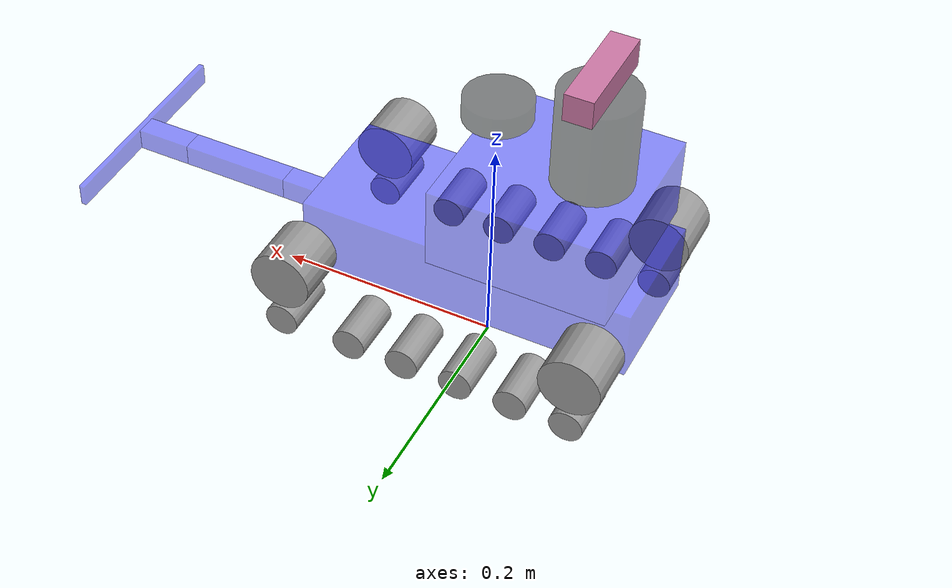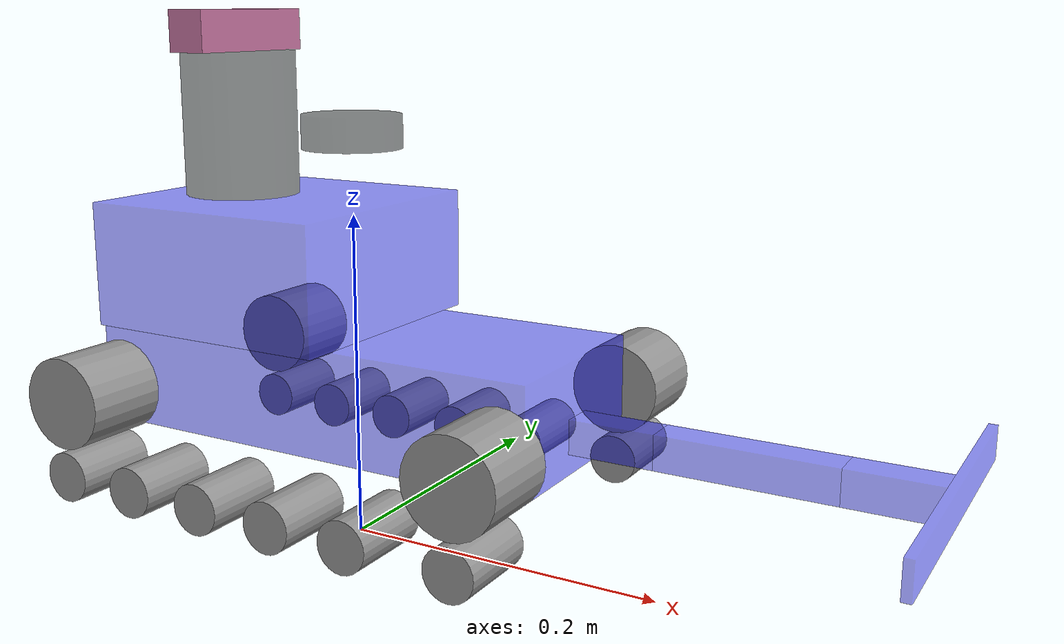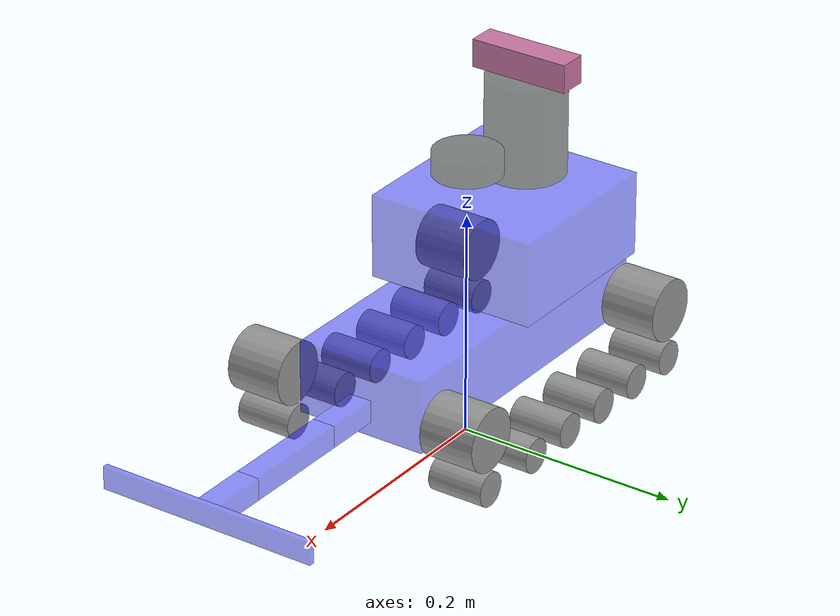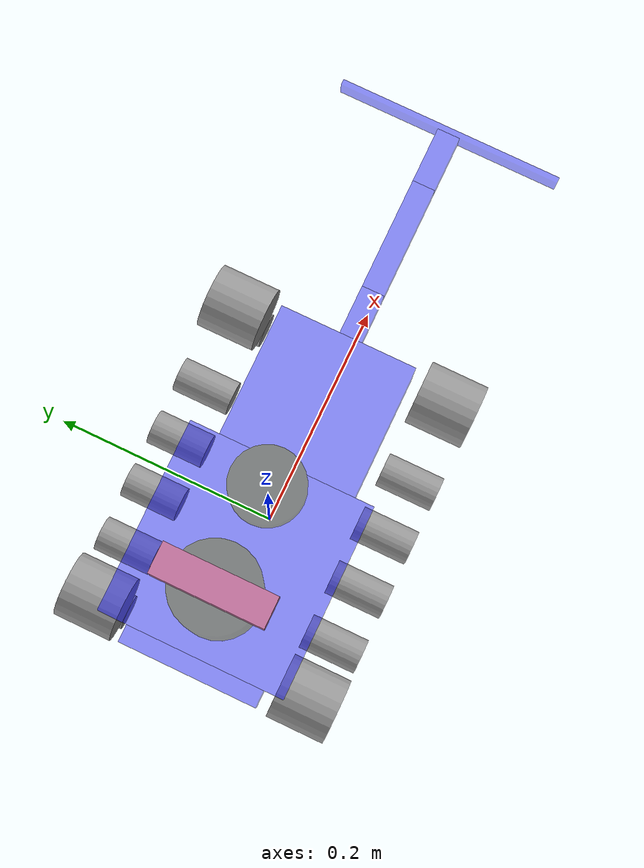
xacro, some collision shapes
<?xml version="1.0"?>
<robot name="robot" xmlns:xacro="http://wiki.ros.org/xacro">
    <xacro:arg name="robot_color" default="Green" />
    <xacro:arg name="robot_name" default="robot" />
    <xacro:arg name="robot_namespace" default="" />
    <xacro:property name="robot_color" value="$(arg robot_color)"/>
    <xacro:property name="robot_name" value="$(arg robot_name)"/>
    <xacro:property name="robot_namespace" value="$(arg robot_namespace)"/>
    <xacro:property name="PI" value="3.1415926"/>
    <xacro:macro name="default_inertial" params="mass">
		<inertial>
			<mass value="1"/>
			<inertia ixx="0.1" ixy="0.0" ixz="0.0" iyy="0.1" iyz="0.0" izz="0.1" />
		</inertial>
	</xacro:macro>
    <xacro:macro name="wheel_func" params="wheel_name radius length xyz rpy mu mu2" >
        <link name="${robot_name}_${wheel_name}_link">
            <visual>
                <geometry>
                    <cylinder radius="${radius}" length="${length}" />
                </geometry>
                <origin xyz="0 0 0" rpy="${PI / 2} 0 0" />
            </visual>
            <collision>
                <origin xyz="0 0 0" rpy="${PI / 2} 0 0"/>
                <geometry>
                    <cylinder radius="${radius}" length="${length}" />
                </geometry>
            </collision>
            <xacro:default_inertial mass="0.3"/>
        </link>
        <joint name="${robot_name}_${wheel_name}_joint" type="continuous">
            <parent link="${robot_name}_base_link"/>
            <child link="${robot_name}_${wheel_name}_link"/>
            <origin xyz="${xyz}" rpy="${rpy}"/>
            <axis xyz="0 1 0" />
        </joint>
        <gazebo reference="${robot_name}_${wheel_name}_link">
            <material>Gazebo/Gray</material>
        </gazebo>
    </xacro:macro>

    <link name="${robot_name}_base_footprint"/>
    <link name="${robot_name}_base_link">
        <visual>
            <origin xyz="0 0 0" rpy="0 0 0"/>
            <geometry>
                <box size="0.300 0.120 0.065"/>
            </geometry>
            <material name="blue">
                <color rgba="0.1 0.1 1.0 0.5" />
            </material>
        </visual>
        <collision>
            <origin xyz="0 0 0" rpy="0 0 0"/>
            <geometry>
                <box size="0.300 0.120 0.065"/>
            </geometry>
            <material name="blue">
                <color rgba="0.1 0.1 1.0 0.5" />
            </material>
        </collision>
        <xacro:default_inertial mass="2"/>
    </link>
    <link name="${robot_name}_plat_link">
        <visual>
            <origin xyz="0 0 0.0" rpy="0 0 0"/>
            <geometry>
                <box size="0.16 0.155 0.075"/>
            </geometry>
            <material name="blue">
                <color rgba="0.1 0.1 1.0 0.5" />
            </material>
        </visual>
        <collision>
            <origin xyz="0 0 0" rpy="0 0 0"/>
            <geometry>
                <box size="0.16 0.155 0.075"/>
            </geometry>
            <material name="blue">
                <color rgba="0.1 0.1 1.0 0.5" />
            </material>
        </collision>
        <xacro:default_inertial mass="0.02"/>
    </link>
    <link name="${robot_name}_laser_link">
        <visual>
            <origin xyz="0 0 0" rpy="0 0 0"/>
            <geometry>
                <cylinder length="0.02" radius="0.03"/>
            </geometry>
            <material name="black">
                <color rgba="0.0 0.0 0.0 0.5" />
            </material>
        </visual>
        <collision>
            <origin xyz="0 0 0" rpy="0 0 0"/>
            <geometry>
                <cylinder length="0.02" radius="0.03"/>
            </geometry>
                <material name="black">
                <color rgba="0.0 0.0 0.0 0.5" />
            </material>
        </collision>
        <xacro:default_inertial mass="0.01"/>
    </link>
    <link name="${robot_name}_tripod_link">
        <visual>
            <origin xyz="0 0 0" rpy="0 0 0"/>
            <geometry>
                <cylinder length="0.09" radius="0.035"/>
            </geometry>
            <material name="black">
                <color rgba="0.0 0.0 0.0 0.5" />
            </material>
        </visual>
        <collision>
            <origin xyz="0 0 0" rpy="0 0 0"/>
            <geometry>
                <cylinder length="0.09" radius="0.035"/>
            </geometry>
                <material name="black">
                <color rgba="0.0 0.0 0.0 0.5" />
            </material>
        </collision>
        <xacro:default_inertial mass="0.01"/>
    </link>

    <joint name="${robot_name}_base_joint" type="fixed">
        <parent link="${robot_name}_base_footprint"/>
        <child link="${robot_name}_base_link"/>
        <origin xyz="0.0 0.0 0.1" rpy="0 0 0"/>
    </joint>
    <joint name="${robot_name}_plat_joint" type="fixed">
        <parent link="${robot_name}_base_link"/>
        <child link="${robot_name}_plat_link"/>
        <origin xyz="-0.055 0.0 0.07" rpy="0 0 0"/>
    </joint>
    <joint name="${robot_name}_laser_joint" type="fixed">
        <parent link="${robot_name}_plat_link"/>
        <child link="${robot_name}_laser_link"/>
        <origin xyz="0.055 0.0 0.08" rpy="0 0 0"/>
    </joint>
    <joint name="${robot_name}_tripod_joint" type="revolute">
        <parent link="${robot_name}_plat_link"/>
        <child link="${robot_name}_tripod_link"/>
        <origin xyz="-0.03 0.0 0.08" rpy="0 0 0"/>
        <axis xyz="0 0 1" />
        <limit effort="30" velocity="1.0" lower="-2.3561944" upper="2.3561944" />
    </joint>

    <xacro:wheel_func wheel_name="left_front" xyz="0.14 -0.095 -0.005" rpy="0 0 0" radius="0.0275" length="0.05" mu="1" mu2="1"/>

    <xacro:wheel_func wheel_name="left0" xyz="0.14 -0.095 -0.05" rpy="0 0 0" radius="0.015" length="0.05" mu="1" mu2="1"/>
    <xacro:wheel_func wheel_name="left1" xyz="0.075 -0.095 -0.05" rpy="0 0 0" radius="0.015" length="0.05" mu="1" mu2="1"/>
    <xacro:wheel_func wheel_name="left2" xyz="0.025 -0.095 -0.05" rpy="0 0 0" radius="0.015" length="0.05" mu="1" mu2="1"/>
    <xacro:wheel_func wheel_name="left3" xyz="-0.025 -0.095 -0.05" rpy="0 0 0" radius="0.015" length="0.05" mu="1" mu2="1"/>
    <xacro:wheel_func wheel_name="left4" xyz="-0.075 -0.095 -0.05" rpy="0 0 0" radius="0.015" length="0.05" mu="1" mu2="1"/>
    <xacro:wheel_func wheel_name="left5" xyz="-0.125 -0.095 -0.05" rpy="0 0 0" radius="0.015" length="0.05" mu="1" mu2="1"/>

    <xacro:wheel_func wheel_name="left_back" xyz="-0.125 -0.095 -0.005" rpy="0 0 0" radius="0.0275" length="0.05" mu="1" mu2="1"/>

    <xacro:wheel_func wheel_name="right_front" xyz="0.14 0.095 -0.005" rpy="0 0 0" radius="0.0275" length="0.05" mu="1" mu2="1"/>

    <xacro:wheel_func wheel_name="right0" xyz="0.14 0.095 -0.05" rpy="0 0 0" radius="0.015" length="0.05" mu="1" mu2="1"/>
    <xacro:wheel_func wheel_name="right1" xyz="0.075 0.095 -0.05" rpy="0 0 0" radius="0.015" length="0.05" mu="1" mu2="1"/>
    <xacro:wheel_func wheel_name="right2" xyz="0.025 0.095 -0.05" rpy="0 0 0" radius="0.015" length="0.05" mu="1" mu2="1"/>
    <xacro:wheel_func wheel_name="right3" xyz="-0.025 0.095 -0.05" rpy="0 0 0" radius="0.015" length="0.05" mu="1" mu2="1"/>
    <xacro:wheel_func wheel_name="right4" xyz="-0.075 0.095 -0.05" rpy="0 0 0" radius="0.015" length="0.05" mu="1" mu2="1"/>
    <xacro:wheel_func wheel_name="right5" xyz="-0.125 0.095 -0.05" rpy="0 0 0" radius="0.015" length="0.05" mu="1" mu2="1"/>

    <xacro:wheel_func wheel_name="right_back" xyz="-0.125 0.095 -0.005" rpy="0 0 0" radius="0.0275" length="0.05" mu="1" mu2="1"/>

    <gazebo reference="${robot_name}_base_link">
        <material>Gazebo/${robot_color}</material>
    </gazebo>
    <gazebo reference="${robot_name}_plat_link">
        <material>Gazebo/Black</material>
    </gazebo>
    <gazebo reference="${robot_name}_laser_link">
        <material>Gazebo/Gray</material>
    </gazebo>
    <gazebo reference="${robot_name}_tripod_link">
        <material>Gazebo/Gray</material>
    </gazebo>

    <xacro:include filename="$(find caterpillar_robot)/urdf/d435.xacro"/>

    <xacro:realsense_d435 sensor_name="${robot_name}_d435" parent_link="${robot_name}_tripod_link" rate="30" robot_name="${robot_name}">
        <origin rpy="0 0 0 " xyz="0 0 0.045"/>
    </xacro:realsense_d435>

    <xacro:include filename="$(find caterpillar_robot)/urdf/servo_arm.xacro"/>
    <xacro:servo_arm robot_name="${robot_name}" arm_name="arm" parent_link="${robot_name}_base_link">
        <origin rpy="0 0 0 " xyz="0.15 0 -0.01"/>
    </xacro:servo_arm>

    <gazebo>
        <plugin name='${robot_name}_diff_drive' filename='libgazebo_ros_planar_move.so'>
            <ros>
                <namespace>/${robot_namespace}</namespace>
            </ros>
            <update_rate>100</update_rate>
            <publish_rate>100</publish_rate>
            <publish_odom>true</publish_odom>
            <publish_odom_tf>true</publish_odom_tf>

            <odometry_frame>${robot_name}_odom</odometry_frame>
            <robot_base_frame>${robot_name}_base_footprint</robot_base_frame>
        </plugin>
    </gazebo>

    <gazebo reference="${robot_name}_laser_link">
        <sensor name="${robot_name}_laser_sensor" type="ray">
        <always_on>true</always_on>
        <visualize>false</visualize>
        <update_rate>10</update_rate>
        <pose>0 0 0.075 0 0 0</pose>
        <ray>
            <scan>
              <horizontal>
                <samples>360</samples>
                <resolution>1.000000</resolution>
                <min_angle>0.00</min_angle>
                <max_angle>6.28</max_angle>
              </horizontal>
            </scan>
            <range>
              <min>0.200000</min>
              <max>50</max>
              <resolution>0.005000</resolution>
            </range>
            <noise>
              <type>gaussian</type>
              <mean>0.0</mean>
              <stddev>0.001</stddev>
            </noise>
        </ray>

        <plugin name="${robot_name}_laserscan" filename="libgazebo_ros_ray_sensor.so">
          <robotNamespace>/${robot_namespace}</robotNamespace>
          <ros>
            <namespace>/${robot_namespace}</namespace>
            <remapping>~/out:=scan</remapping>
          </ros>
          <output_type>sensor_msgs/LaserScan</output_type>
          <frame_name>laser_link</frame_name>
        </plugin>
        </sensor>
      </gazebo>

    <gazebo>
        <plugin name="${robot_name}_tripod_trajectory" filename="libgazebo_ros_servojoint.so">
            <ros>
                <namespace>/${robot_namespace}</namespace>
                <remapping>set_servojoint:=tripod</remapping>
            </ros>
            <update_rate>10</update_rate>
            <joints>${robot_name}_tripod_joint</joints>
        </plugin>
    </gazebo>

    <gazebo>
        <plugin name="${robot_name}_sokoban" filename="libgazebo_ros_sokoban.so">
            <ros>
                <namespace>/${robot_namespace}</namespace>
            </ros>
            <joint_arm>${robot_name}_arm_arm_joint</joint_arm>
            <joint_hand>${robot_name}_arm_hand_joint</joint_hand>
        </plugin>
    </gazebo>

</robot>

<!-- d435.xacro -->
<robot xmlns:xacro="http://www.ros.org/wiki/xacro">

  <xacro:include filename="$(find realsense_ros2_gazebo)/xacro/inertia_calc.xacro"/>

  <!-- INTEL REALSENSE D435 -->

  <xacro:macro name="realsense_d435" params="sensor_name parent_link *origin rate robot_name">

    <xacro:property name="d435_cam_depth_to_left_ir_offset" value="0.0"/>
    <xacro:property name="d435_cam_depth_to_right_ir_offset" value="-0.050"/>
    <xacro:property name="d435_cam_depth_to_color_offset" value="0.015"/>
    <xacro:property name="d435_cam_width" value="0.090"/>
    <xacro:property name="d435_cam_height" value="0.025"/>
    <xacro:property name="d435_cam_depth" value="0.02505"/>
    <xacro:property name="d435_cam_mass" value="0.564"/>
    <xacro:property name="d435_cam_mount_from_center_offset" value="0.0149"/>
    <xacro:property name="d435_cam_depth_px" value="${d435_cam_mount_from_center_offset}"/>
    <xacro:property name="d435_cam_depth_py" value="0.0175"/>
    <xacro:property name="d435_cam_depth_pz" value="${d435_cam_height/2}"/>

    <!-- camera body, with origin at bottom screw mount -->
    <joint name="${sensor_name}_joint" type="fixed">
      <xacro:insert_block name="origin" />
      <parent link="${parent_link}"/>
      <child link="${sensor_name}_bottom_screw_frame" />
    </joint>
    <link name="${sensor_name}_bottom_screw_frame"/>

    <joint name="${sensor_name}_link_joint" type="fixed">
      <origin xyz="0 ${d435_cam_depth_py} ${d435_cam_depth_pz}" rpy="0 0 0"/>
      <parent link="${sensor_name}_bottom_screw_frame"/>
      <child link="${sensor_name}_link" />
    </joint>

    <link name="${sensor_name}_link">
      <visual>
        <origin xyz="${d435_cam_mount_from_center_offset} ${-d435_cam_depth_py} 0" rpy="${pi/2} 0 ${pi/2}"/>
        <geometry>
          <mesh filename="file://$(find realsense_ros2_gazebo)/meshes/realsense_d435.stl"/>
        </geometry>
      </visual>
      <collision>
        <origin xyz="0 ${-d435_cam_depth_py} 0" rpy="0 0 0"/>
        <geometry>
          <box size="${d435_cam_depth} ${d435_cam_width} ${d435_cam_height}"/>
        </geometry>
      </collision>
      <inertial>
        <mass value="${d435_cam_mass}" />
        <origin xyz="0 ${-d435_cam_depth_py} 0" rpy="0 0 0"/>
        <xacro:box_inertia m="${d435_cam_mass}" x="${d435_cam_depth}" y="${d435_cam_width}" z="${d435_cam_height}"/>
      </inertial>
    </link>

    <!-- camera depth joints and links -->
    <joint name="${sensor_name}_depth_joint" type="fixed">
      <origin xyz="0 0 0" rpy="0 0 0"/>
      <parent link="${sensor_name}_link"/>
      <child link="${sensor_name}_depth_frame" />
    </joint>
    <link name="${sensor_name}_depth_frame"/>

    <joint name="${sensor_name}_depth_optical_joint" type="fixed">
      <origin xyz="0 0 0" rpy="${-pi/2} 0 ${-pi/2}" />
      <parent link="${sensor_name}_depth_frame" />
      <child link="${sensor_name}_depth_optical_frame" />
    </joint>
    <link name="${sensor_name}_depth_optical_frame"/>

    <!-- camera left IR joints and links -->
    <joint name="${sensor_name}_left_ir_joint" type="fixed">
      <origin xyz="0 ${d435_cam_depth_to_left_ir_offset} 0" rpy="0 0 0" />
      <parent link="${sensor_name}_depth_frame" />
      <child link="${sensor_name}_left_ir_frame" />
    </joint>
    <link name="${sensor_name}_left_ir_frame"/>

    <joint name="${sensor_name}_left_ir_optical_joint" type="fixed">
      <origin xyz="0 0 0" rpy="${-pi/2} 0 ${-pi/2}" />
      <parent link="${sensor_name}_left_ir_frame" />
      <child link="${sensor_name}_left_ir_optical_frame" />
    </joint>
    <link name="${sensor_name}_left_ir_optical_frame"/>

    <!-- camera right IR joints and links -->
    <joint name="${sensor_name}_right_ir_joint" type="fixed">
      <origin xyz="0 ${d435_cam_depth_to_right_ir_offset} 0" rpy="0 0 0" />
      <parent link="${sensor_name}_depth_frame" />
      <child link="${sensor_name}_right_ir_frame" />
    </joint>
    <link name="${sensor_name}_right_ir_frame"/>

    <joint name="${sensor_name}_right_ir_optical_joint" type="fixed">
      <origin xyz="0 0 0" rpy="${-pi/2} 0 ${-pi/2}" />
      <parent link="${sensor_name}_right_ir_frame" />
      <child link="${sensor_name}_right_ir_optical_frame" />
    </joint>
    <link name="${sensor_name}_right_ir_optical_frame"/>

    <!-- camera color joints and links -->
    <joint name="${sensor_name}_color_joint" type="fixed">
      <origin xyz="0 ${d435_cam_depth_to_color_offset} 0" rpy="0 0 0" />
      <parent link="${sensor_name}_depth_frame" />
      <child link="${sensor_name}_color_frame" />
    </joint>
    <link name="${sensor_name}_color_frame"/>

    <joint name="${sensor_name}_color_optical_joint" type="fixed">
      <origin xyz="0 0 0" rpy="${-pi/2} 0 ${-pi/2}" />
      <parent link="${sensor_name}_color_frame" />
      <child link="${sensor_name}_color_optical_frame" />
    </joint>
    <link name="${sensor_name}_color_optical_frame"/>

    <!-- gazebo plugin -->

    <xacro:property name="deg_to_rad" value="0.01745329251994329577" />

    <gazebo reference="${sensor_name}_link">
      <self_collide>0</self_collide>
      <enable_wind>0</enable_wind>
      <kinematic>0</kinematic>
      <gravity>1</gravity>
      <mu2>1</mu2>
      <fdir1>0 0 0</fdir1>
      <kp>1e+13</kp>
      <kd>1</kd>

      <sensor name="${sensor_name}_color" type="camera">
        <camera name="${sensor_name}">
          <horizontal_fov>${69.4*deg_to_rad}</horizontal_fov>
          <image>
            <width>640</width>
            <height>480</height>
            <format>RGB_INT8</format>
          </image>
          <clip>
            <near>0.1</near>
            <far>100</far>
          </clip>
          <noise>
            <type>gaussian</type>
            <mean>0.0</mean>
            <stddev>0.007</stddev>
          </noise>
        </camera>
        <always_on>1</always_on>
        <update_rate>30</update_rate>
        <visualize>1</visualize>
      </sensor>
      <sensor name="${sensor_name}_ired1" type="camera">
        <camera name="${sensor_name}">
          <horizontal_fov>${85.2*deg_to_rad}</horizontal_fov>
          <image>
            <width>1280</width>
            <height>720</height>
            <format>L_INT8</format>
          </image>
          <clip>
            <near>0.1</near>
            <far>100</far>
          </clip>
          <noise>
            <type>gaussian</type>
            <mean>0.0</mean>
            <stddev>0.05</stddev>
          </noise>
        </camera>
        <always_on>1</always_on>
        <update_rate>90</update_rate>
        <visualize>0</visualize>
      </sensor>
      <sensor name="${sensor_name}_ired2" type="camera">
        <camera name="${sensor_name}">
          <horizontal_fov>${85.2*deg_to_rad}</horizontal_fov>
          <image>
            <width>1280</width>
            <height>720</height>
            <format>L_INT8</format>
          </image>
          <clip>
            <near>0.1</near>
            <far>100</far>
          </clip>
          <noise>
            <type>gaussian</type>
            <mean>0.0</mean>
            <stddev>0.05</stddev>
          </noise>
        </camera>
        <always_on>1</always_on>
        <update_rate>90</update_rate>
        <visualize>0</visualize>
      </sensor>
      <sensor name="${sensor_name}_depth" type="depth">
        <camera name="${sensor_name}">
          <horizontal_fov>${85.2*deg_to_rad}</horizontal_fov>
          <image>
            <width>1280</width>
            <height>720</height>
          </image>
          <clip>
            <near>0.1</near>
            <far>100</far>
          </clip>
          <noise>
            <type>gaussian</type>
            <mean>0.0</mean>
            <stddev>0.100</stddev>
          </noise>
        </camera>
        <always_on>1</always_on>
        <update_rate>90</update_rate>
        <visualize>0</visualize>
      </sensor>
    </gazebo>

    <gazebo>
      <plugin name="${sensor_name}" filename="librealsense_gazebo_plugin.so">
        <prefix>${sensor_name}_</prefix>
        <depthUpdateRate>${rate}</depthUpdateRate>
        <colorUpdateRate>${rate}</colorUpdateRate>
        <infraredUpdateRate>${rate}</infraredUpdateRate>
        <depthTopicName>${robot_name}/depth_raw</depthTopicName>
        <depthCameraInfoTopicName>${robot_name}/depth_info</depthCameraInfoTopicName>
        <colorTopicName>${robot_name}/color_raw</colorTopicName>
        <colorCameraInfoTopicName>${robot_name}/color_info</colorCameraInfoTopicName>
        <infrared1TopicName>${robot_name}/infra1_row</infrared1TopicName>
        <infrared1CameraInfoTopicName>${robot_name}/infra1_info</infrared1CameraInfoTopicName>
        <infrared2TopicName>${robot_name}/infra2_row</infrared2TopicName>
        <infrared2CameraInfoTopicName>${robot_name}/infra2_info</infrared2CameraInfoTopicName>
        <colorOpticalframeName>${sensor_name}_color_optical_frame</colorOpticalframeName>
        <depthOpticalframeName>${sensor_name}_depth_optical_frame</depthOpticalframeName>
        <infrared1OpticalframeName>${sensor_name}_infrared1_optical_frame</infrared1OpticalframeName>
        <infrared2OpticalframeName>${sensor_name}_infrared2_optical_frame</infrared2OpticalframeName>
        <rangeMinDepth>0.2</rangeMinDepth>
        <rangeMaxDepth>10.0</rangeMaxDepth>
        <pointCloud>false</pointCloud>
        <pointCloudTopicName>depth/color/points</pointCloudTopicName>
        <pointCloudCutoff>0.25</pointCloudCutoff>
        <pointCloudCutoffMax>9.0</pointCloudCutoffMax>
      </plugin>
    </gazebo>

  </xacro:macro>

  <!-- INTEL REALSENSE R200 -->

</robot>

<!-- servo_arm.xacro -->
<robot xmlns:xacro="http://www.ros.org/wiki/xacro">
    <xacro:macro name="dummy_inertial" params="mass">
		<inertial>
			<mass value="${mass}"/>
			<inertia ixx="0.1" ixy="0.0" ixz="0.0" iyy="0.1" iyz="0.0" izz="0.1" />
		</inertial>
	</xacro:macro>
    <xacro:macro name="servo_arm" params="robot_name arm_name parent_link *origin">
        <link name="${robot_name}_${arm_name}_base_link">
            <visual>
                <origin xyz="0 0 0" rpy="0 0 0"/>
                <geometry>
                    <box size="0.100 0.020 0.02"/>
                </geometry>
                <material name="blue">
                    <color rgba="0.1 0.1 1.0 0.5" />
                </material>
            </visual>
            <collision>
                <origin xyz="0 0 0" rpy="0 0 0"/>
                <geometry>
                    <box size="0.100 0.020 0.02"/>
                </geometry>
                <material name="blue">
                    <color rgba="0.1 0.1 1.0 0.5" />
                </material>
            </collision>
            <xacro:dummy_inertial mass="0.01"/>
        </link>
        <link name="${robot_name}_${arm_name}_arm_link">
            <visual>
                <origin xyz="0.05 0 0" rpy="0 0 0"/>
                <geometry>
                    <box size="0.100 0.020 0.02"/>
                </geometry>
                <material name="blue">
                    <color rgba="0.1 0.1 1.0 0.5" />
                </material>
            </visual>
            <collision>
                <origin xyz="0.05 0 0" rpy="0 0 0"/>
                <geometry>
                    <box size="0.100 0.020 0.02"/>
                </geometry>
                <material name="blue">
                    <color rgba="0.1 0.1 1.0 0.5" />
                </material>
            </collision>
            <xacro:dummy_inertial mass="0.01"/>
        </link>
        <link name="${robot_name}_${arm_name}_hand_link">
            <visual>
                <origin xyz="0.025 0 0" rpy="0 0 0"/>
                <geometry>
                    <box size="0.05 0.020 0.02"/>
                </geometry>
                <material name="blue">
                    <color rgba="0.1 0.1 1.0 0.5" />
                </material>
            </visual>
            <collision>
                <origin xyz="0.025 0 0" rpy="0 0 0"/>
                <geometry>
                    <box size="0.05 0.020 0.02"/>
                </geometry>
                <material name="blue">
                    <color rgba="0.1 0.1 1.0 0.5" />
                </material>
            </collision>
            <xacro:dummy_inertial mass="0.01"/>
        </link>
        <link name="${robot_name}_${arm_name}_function">
            <visual>
                <origin xyz="0 0 0" rpy="0 0 0"/>
                <geometry>
                    <box size="0.005 0.2 0.02"/>
                </geometry>
                <material name="blue">
                    <color rgba="0.1 0.1 1.0 0.5" />
                </material>
            </visual>
            <collision>
                <origin xyz="0 0 0" rpy="0 0 0"/>
                <geometry>
                    <box size="0.005 0.2 0.02"/>
                </geometry>
                <material name="blue">
                    <color rgba="0.1 0.1 1.0 0.5" />
                </material>
            </collision>
            <xacro:dummy_inertial mass="0.01"/>
        </link>
        <joint name="${robot_name}_${arm_name}_base_joint" type="fixed">
            <xacro:insert_block name="origin" />
            <parent link="${parent_link}"/>
            <child link="${robot_name}_${arm_name}_base_link"/>
        </joint>
        <joint name="${robot_name}_${arm_name}_arm_joint" type="continuous">
            <parent link="${robot_name}_${arm_name}_base_link"/>
            <child link="${robot_name}_${arm_name}_arm_link"/>
            <origin xyz="0.05 0 0" rpy="0 0 0"/>
            <axis xyz="0 1 0" />
        </joint>
        <joint name="${robot_name}_${arm_name}_hand_joint" type="continuous">
            <parent link="${robot_name}_${arm_name}_arm_link"/>
            <child link="${robot_name}_${arm_name}_hand_link"/>
            <origin xyz="0.1 0 0" rpy="0 0 0"/>
            <axis xyz="0 1 0" />
        </joint>
        <joint name="${robot_name}_${arm_name}_function_joint" type="fixed">
            <parent link="${robot_name}_${arm_name}_hand_link"/>
            <child link="${robot_name}_${arm_name}_function"/>
            <origin xyz="0.0525 0 0" rpy="0 0 0"/>
        </joint>
        <gazebo reference="${robot_name}_${arm_name}_base_link">
            <material>Gazebo/Turquoise</material>
        </gazebo>
        <gazebo reference="${robot_name}_${arm_name}_arm_link">
            <material>Gazebo/Turquoise</material>
        </gazebo>
        <gazebo reference="${robot_name}_${arm_name}_hand_link">
            <material>Gazebo/Turquoise</material>
        </gazebo>
        <gazebo reference="${robot_name}_${arm_name}_function">
            <material>Gazebo/Gray</material>
        </gazebo>
    </xacro:macro>
</robot>
